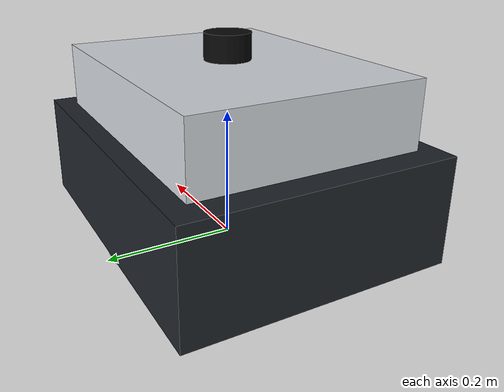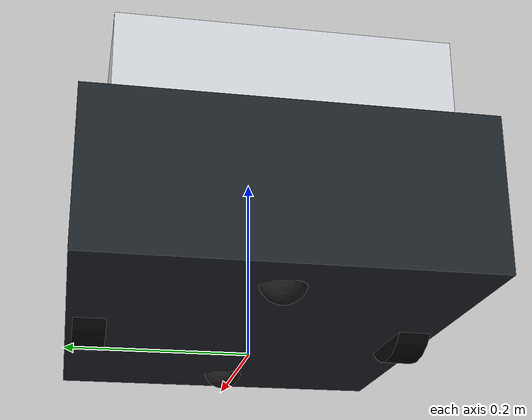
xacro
<?xml version="1.0"?>

<robot
  xmlns:xacro="http://www.ros.org/wiki/xacro"
  name="serving_robot">

  <xacro:arg
    name="robot_name"
    default="robot_01"/>

  <xacro:include
    filename="$(find serving_robot_description)/urdf/base.xacro"/>

  <xacro:include
    filename="$(find serving_robot_description)/urdf/sensors.xacro"/>

  <xacro:serving_robot_base/>

  <xacro:serving_robot_sensors
    robot_name="$(arg robot_name)"/>

</robot>

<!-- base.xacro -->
<robot xmlns:xacro="http://www.ros.org/wiki/xacro">

  <!-- Serving Robot Prototype Base                              -->
  <!-- Coordinate convention                                     -->
  <!--   +X : forward                                             -->
  <!--   +Y : left                                                -->
  <!--   +Z : up                                                  -->
  <!-- Drive configuration                                       -->
  <!--   Differential drive                                      -->
  <!--   Two independently driven wheels                         -->
  <!--   Front / rear passive caster supports                    -->

  <!-- Main dimensions                                            -->

  <xacro:property name="base_length" value="0.52"/>
  <xacro:property name="base_width" value="0.40"/>

  <!-- Height of base_link from ground -->
  <xacro:property name="base_link_z" value="0.12"/>

  <!-- Lower body skirt -->
  <xacro:property name="lower_shell_height" value="0.16"/>
  <xacro:property name="lower_shell_z" value="-0.02"/>

  <!-- Upper tapered-looking housing -->
  <xacro:property name="upper_shell_length" value="0.44"/>
  <xacro:property name="upper_shell_width" value="0.34"/>
  <xacro:property name="upper_shell_height" value="0.10"/>
  <xacro:property name="upper_shell_z" value="0.11"/>

  <!-- Drive wheels                                               -->

  <xacro:property name="wheel_radius" value="0.075"/>
  <xacro:property name="wheel_width" value="0.035"/>

  <xacro:property name="wheel_separation" value="0.35"/>

  <!-- Measured in simulation: in-place rotation is about 10 percent larger than
       the 0.35 m geometric track predicts. Used only by DiffDrive (cmd and odom). -->
  <xacro:property name="wheel_separation_effective" value="0.316"/>

  <xacro:property
    name="wheel_z"
    value="${wheel_radius - base_link_z}"/>

  <!-- Passive support casters                                    -->

  <xacro:property name="caster_radius" value="0.025"/>
  <xacro:property name="caster_x" value="0.19"/>

  <xacro:property
    name="caster_z"
    value="${caster_radius - base_link_z + 0.003}"/>

  <!-- Mass                                                       -->

  <xacro:property name="base_mass" value="18.0"/>
  <xacro:property name="wheel_mass" value="0.7"/>
  <xacro:property name="caster_mass" value="0.2"/>

  <!-- Materials                                                  -->

  <material name="body_dark">
    <color rgba="0.12 0.14 0.16 1.0"/>
  </material>

  <material name="body_white">
    <color rgba="0.82 0.84 0.86 1.0"/>
  </material>

  <material name="wheel_black">
    <color rgba="0.03 0.03 0.03 1.0"/>
  </material>

  <material name="caster_dark">
    <color rgba="0.10 0.10 0.10 1.0"/>
  </material>

  <!-- Inertia helpers                                            -->

  <xacro:macro
    name="box_inertial"
    params="mass x y z">

    <inertial>

      <origin xyz="0 0 0" rpy="0 0 0"/>

      <mass value="${mass}"/>

      <inertia
        ixx="${mass * (y * y + z * z) / 12.0}"
        ixy="0.0"
        ixz="0.0"
        iyy="${mass * (x * x + z * z) / 12.0}"
        iyz="0.0"
        izz="${mass * (x * x + y * y) / 12.0}"/>

    </inertial>

  </xacro:macro>

  <!-- Cylinder axis is Y after visual/collision rotation -->
  <xacro:macro
    name="wheel_inertial"
    params="mass radius width">

    <inertial>

      <origin xyz="0 0 0" rpy="0 0 0"/>

      <mass value="${mass}"/>

      <inertia
        ixx="${mass * (3.0 * radius * radius + width * width) / 12.0}"
        ixy="0.0"
        ixz="0.0"
        iyy="${mass * radius * radius / 2.0}"
        iyz="0.0"
        izz="${mass * (3.0 * radius * radius + width * width) / 12.0}"/>

    </inertial>

  </xacro:macro>

  <xacro:macro
    name="sphere_inertial"
    params="mass radius">

    <inertial>

      <origin xyz="0 0 0" rpy="0 0 0"/>

      <mass value="${mass}"/>

      <inertia
        ixx="${0.4 * mass * radius * radius}"
        ixy="0.0"
        ixz="0.0"
        iyy="${0.4 * mass * radius * radius}"
        iyz="0.0"
        izz="${0.4 * mass * radius * radius}"/>

    </inertial>

  </xacro:macro>

  <!-- Main base macro                                            -->

  <xacro:macro name="serving_robot_base" params="">

    <!-- Ground reference                                        -->

    <link name="base_footprint"/>

    <!-- Main chassis                                             -->

    <link name="base_link">

      <!-- Visual: lower product-style outer shell               -->

      <visual name="lower_shell_visual">

        <origin
          xyz="0 0 ${lower_shell_z}"
          rpy="0 0 0"/>

        <geometry>
          <box
            size="${base_length}
                  ${base_width}
                  ${lower_shell_height}"/>
        </geometry>

        <material name="body_dark"/>

      </visual>

      <!-- Visual: upper housing                                  -->

      <visual name="upper_shell_visual">

        <origin
          xyz="0 0 ${upper_shell_z}"
          rpy="0 0 0"/>

        <geometry>
          <box
            size="${upper_shell_length}
                  ${upper_shell_width}
                  ${upper_shell_height}"/>
        </geometry>

        <material name="body_white"/>

      </visual>

      <!-- Collision model                                       -->
      <!-- Central collision body is narrower than visual shell  -->
      <!-- so the drive wheels have physical clearance.          -->
      <!-- Front/rear bumpers preserve most of the outer         -->
      <!-- physical footprint without intersecting the wheels.   -->

      <collision name="central_chassis_collision">

        <origin
          xyz="0 0 0.03"
          rpy="0 0 0"/>

        <geometry>
          <box size="0.40 0.30 0.18"/>
        </geometry>

      </collision>

      <collision name="front_bumper_collision">

        <origin
          xyz="0.22 0 -0.02"
          rpy="0 0 0"/>

        <geometry>
          <box size="0.08 0.38 0.10"/>
        </geometry>

      </collision>

      <collision name="rear_bumper_collision">

        <origin
          xyz="-0.22 0 -0.02"
          rpy="0 0 0"/>

        <geometry>
          <box size="0.08 0.38 0.10"/>
        </geometry>

      </collision>

      <!-- Approximate inertia using the whole base envelope -->

      <xacro:box_inertial
        mass="${base_mass}"
        x="${base_length}"
        y="${base_width}"
        z="${lower_shell_height + upper_shell_height}"/>

    </link>

    <!-- base_footprint -> base_link                             -->

    <joint name="base_footprint_joint" type="fixed">

      <parent link="base_footprint"/>
      <child link="base_link"/>

      <origin
        xyz="0 0 ${base_link_z}"
        rpy="0 0 0"/>

    </joint>

    <!-- Left drive wheel                                        -->

    <link name="left_wheel_link">

      <visual>

        <!--
          URDF cylinder axis is Z by default.
          Rotate 90 degrees around X so axle aligns with Y.
        -->

        <origin
          xyz="0 0 0"
          rpy="1.57079632679 0 0"/>

        <geometry>

          <cylinder
            radius="${wheel_radius}"
            length="${wheel_width}"/>

        </geometry>

        <material name="wheel_black"/>

      </visual>

      <collision>

        <origin
          xyz="0 0 0"
          rpy="1.57079632679 0 0"/>

        <geometry>

          <cylinder
            radius="${wheel_radius}"
            length="${wheel_width}"/>

        </geometry>

      </collision>

      <xacro:wheel_inertial
        mass="${wheel_mass}"
        radius="${wheel_radius}"
        width="${wheel_width}"/>

    </link>

    <joint name="left_wheel_joint" type="continuous">

      <parent link="base_link"/>
      <child link="left_wheel_link"/>

      <origin
        xyz="0 ${wheel_separation / 2.0} ${wheel_z}"
        rpy="0 0 0"/>

      <axis xyz="0 1 0"/>

    </joint>

    <!-- Right drive wheel                                       -->

    <link name="right_wheel_link">

      <visual>

        <origin
          xyz="0 0 0"
          rpy="1.57079632679 0 0"/>

        <geometry>

          <cylinder
            radius="${wheel_radius}"
            length="${wheel_width}"/>

        </geometry>

        <material name="wheel_black"/>

      </visual>

      <collision>

        <origin
          xyz="0 0 0"
          rpy="1.57079632679 0 0"/>

        <geometry>

          <cylinder
            radius="${wheel_radius}"
            length="${wheel_width}"/>

        </geometry>

      </collision>

      <xacro:wheel_inertial
        mass="${wheel_mass}"
        radius="${wheel_radius}"
        width="${wheel_width}"/>

    </link>

    <joint name="right_wheel_joint" type="continuous">

      <parent link="base_link"/>
      <child link="right_wheel_link"/>

      <origin
        xyz="0 ${-wheel_separation / 2.0} ${wheel_z}"
        rpy="0 0 0"/>

      <axis xyz="0 1 0"/>

    </joint>

    <!-- Front passive caster                                    -->

    <link name="front_caster_link">

      <visual>

        <geometry>
          <sphere radius="${caster_radius}"/>
        </geometry>

        <material name="caster_dark"/>

      </visual>

      <collision>

        <geometry>
          <sphere radius="${caster_radius}"/>
        </geometry>

      </collision>

      <xacro:sphere_inertial
        mass="${caster_mass}"
        radius="${caster_radius}"/>

    </link>

    <joint name="front_caster_joint" type="fixed">

      <parent link="base_link"/>
      <child link="front_caster_link"/>

      <origin
        xyz="${caster_x} 0 ${caster_z}"
        rpy="0 0 0"/>

    </joint>

    <!-- Rear passive caster                                     -->

    <link name="rear_caster_link">

      <visual>

        <geometry>
          <sphere radius="${caster_radius}"/>
        </geometry>

        <material name="caster_dark"/>

      </visual>

      <collision>

        <geometry>
          <sphere radius="${caster_radius}"/>
        </geometry>

      </collision>

      <xacro:sphere_inertial
        mass="${caster_mass}"
        radius="${caster_radius}"/>

    </link>

    <joint name="rear_caster_joint" type="fixed">

      <parent link="base_link"/>
      <child link="rear_caster_link"/>

      <origin
        xyz="${-caster_x} 0 ${caster_z}"
        rpy="0 0 0"/>

    </joint>

    <gazebo reference="left_wheel_link">
      <mu1>1.0</mu1>
      <mu2>1.0</mu2>
    </gazebo>

    <gazebo reference="right_wheel_link">
      <mu1>1.0</mu1>
      <mu2>1.0</mu2>
    </gazebo>

    <gazebo reference="front_caster_link">
      <mu1>0.001</mu1>
      <mu2>0.001</mu2>
    </gazebo>

    <gazebo reference="rear_caster_link">
      <mu1>0.001</mu1>
      <mu2>0.001</mu2>
    </gazebo>

    <gazebo>

      <plugin
        filename="gz-sim-diff-drive-system"
        name="gz::sim::systems::DiffDrive">

        <left_joint>left_wheel_joint</left_joint>
        <right_joint>right_wheel_joint</right_joint>

        <wheel_separation>${wheel_separation_effective}</wheel_separation>
        <wheel_radius>${wheel_radius}</wheel_radius>

        <odom_publish_frequency>50</odom_publish_frequency>

        <frame_id>odom</frame_id>
        <child_frame_id>base_footprint</child_frame_id>

      </plugin>

      <plugin
        filename="gz-sim-joint-state-publisher-system"
        name="gz::sim::systems::JointStatePublisher">

        <joint_name>left_wheel_joint</joint_name>
        <joint_name>right_wheel_joint</joint_name>

      </plugin>

    </gazebo>

  </xacro:macro>

</robot>

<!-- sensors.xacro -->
<robot xmlns:xacro="http://www.ros.org/wiki/xacro">

  <xacro:macro
    name="serving_robot_sensors"
    params="robot_name">

    <!-- 2D LiDAR                                                 -->

    <link name="laser_link">

      <visual>
        <origin xyz="0 0 0" rpy="0 0 0"/>

        <geometry>
          <cylinder
            radius="0.035"
            length="0.04"/>
        </geometry>

        <material name="lidar_black">
          <color rgba="0.03 0.03 0.03 1.0"/>
        </material>
      </visual>

      <collision>
        <origin xyz="0 0 0" rpy="0 0 0"/>

        <geometry>
          <cylinder
            radius="0.035"
            length="0.04"/>
        </geometry>
      </collision>

      <inertial>
        <origin xyz="0 0 0" rpy="0 0 0"/>

        <mass value="0.15"/>

        <inertia
          ixx="0.000066"
          ixy="0.0"
          ixz="0.0"
          iyy="0.000066"
          iyz="0.0"
          izz="0.000092"/>
      </inertial>

    </link>

    <joint name="laser_joint" type="fixed">

      <parent link="base_link"/>
      <child link="laser_link"/>

      <origin
        xyz="0 0 0.18"
        rpy="0 0 0"/>

    </joint>

    <!-- Gazebo Harmonic GPU LiDAR                               -->

    <gazebo reference="laser_link">

      <sensor
        name="gpu_lidar"
        type="gpu_lidar">

        <always_on>true</always_on>
        <visualize>true</visualize>

        <update_rate>10</update_rate>

        <topic>/model/${robot_name}/scan</topic>

        <gz_frame_id>laser_link</gz_frame_id>

        <lidar>

          <scan>
            <horizontal>

              <samples>720</samples>
              <resolution>1</resolution>

              <min_angle>-3.14159265359</min_angle>
              <max_angle>3.14159265359</max_angle>

            </horizontal>
          </scan>

          <range>
            <min>0.10</min>
            <max>12.0</max>
            <resolution>0.01</resolution>
          </range>

        </lidar>

      </sensor>

    </gazebo>

  </xacro:macro>

</robot>
